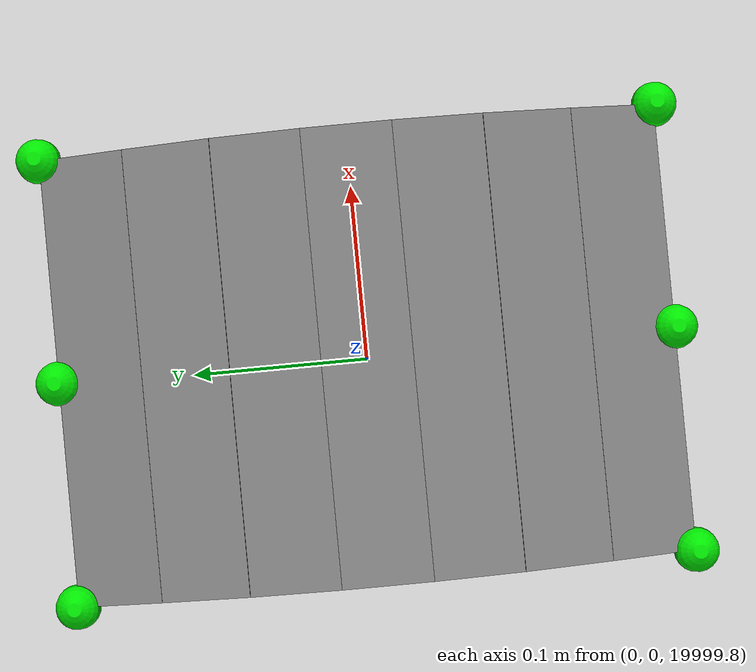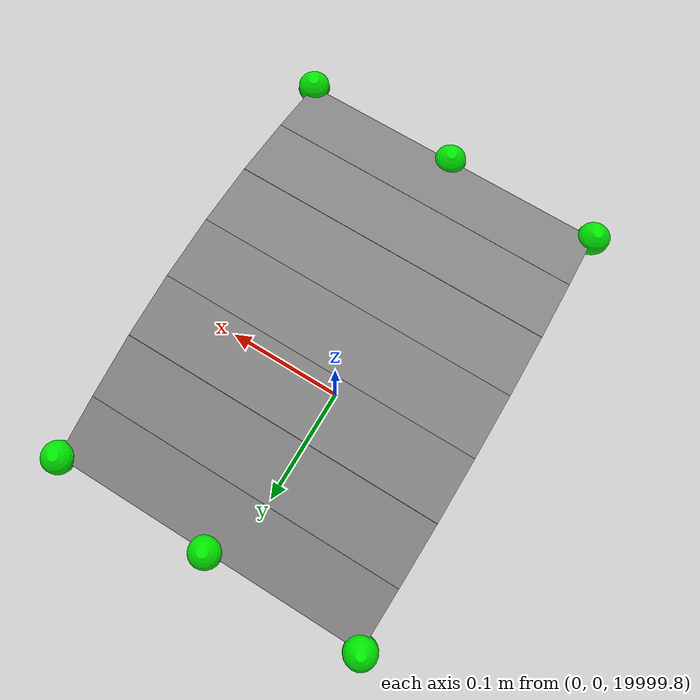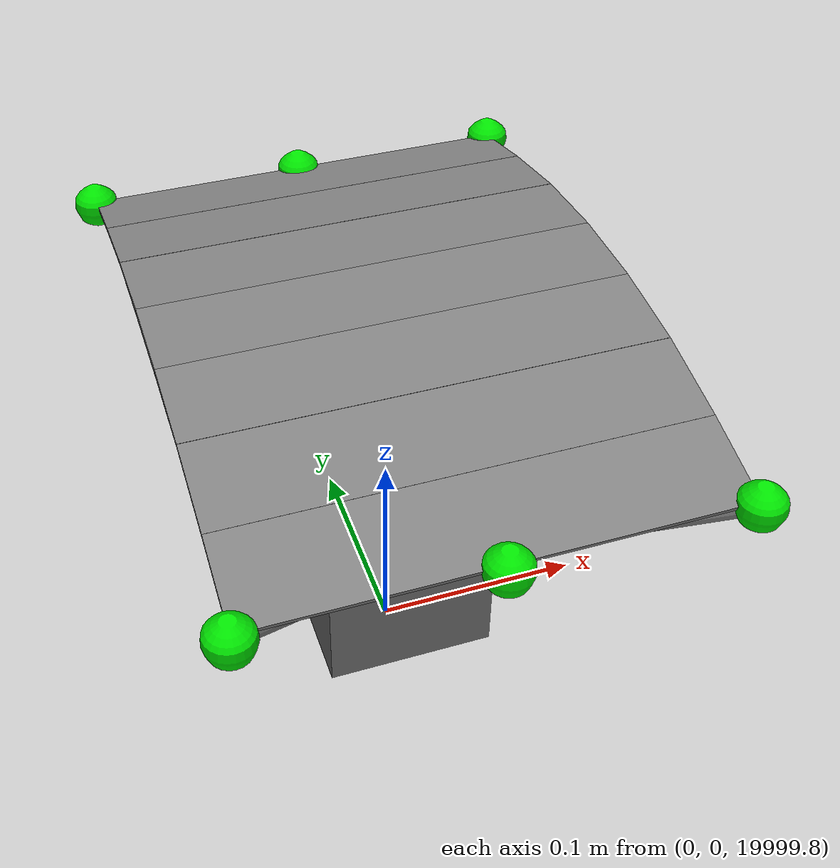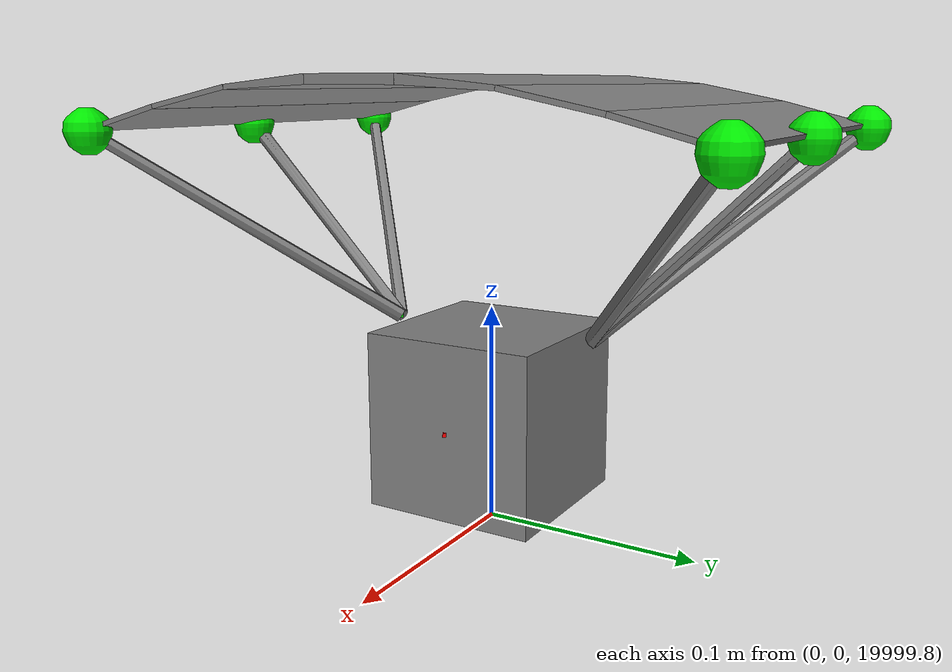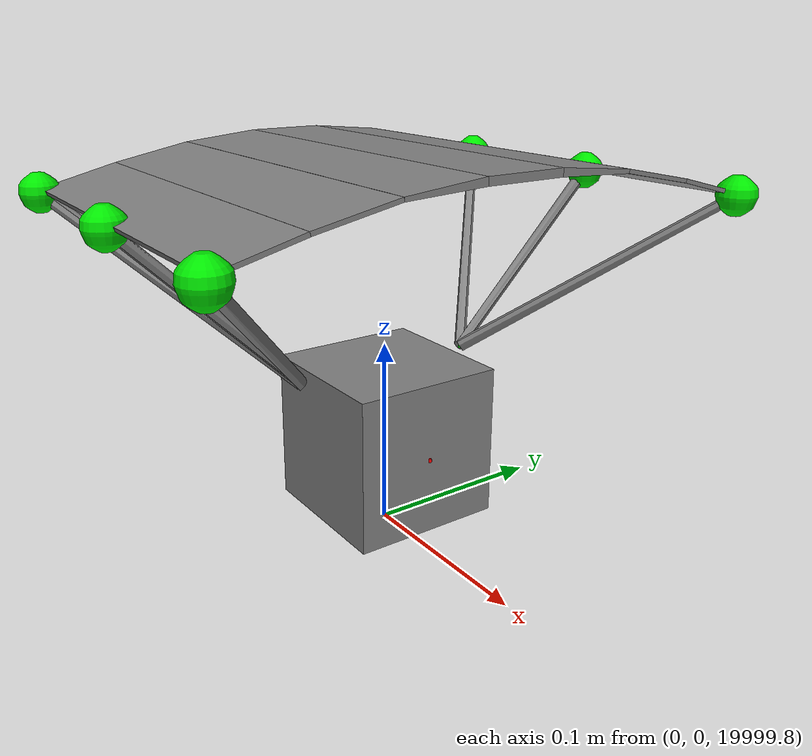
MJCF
<mujoco>
  <worldbody>
    <light diffuse=".5 .5 .5" pos="0 0 1" dir="0 0 -1"/>
    <geom type="plane" size="20 20 0.1" rgba="0 0 0.9 1"/>
    <body name="parachute" pos = "0 0 20000" >

      <freejoint/>
        <geom name="Parahute_module_center" pos="0 0 0" type="box" size="0.1 0.02 0.001" mass="0.01"/>
        <geom name="Parahute_module_left_one" pos="0 0.03982568852 -0.00175" euler="-5 0 0" type="box" size="0.1 0.02 0.001" mass="0.01"/>
        <geom name="Parahute_module_left_two" pos="0 0.07947706556 -0.00702" euler="-10 0 0" type="box" size="0.1 0.02 0.001" mass="0.01"/>
        <geom name="Parahute_module_left_three" pos="0 0.11843119668 -0.016074" euler="-15 0 0" type="box" size="0.1 0.02 0.001" mass="0.01"/>
        <site name="Control_lines_parachute_left_front" pos="0.1 0.13843119668 -0.02125038091" size="0.01" rgba="0 0.9 0 1"/>
        <site name="Control_lines_parachute_left_mid" pos="0 0.13843119668 -0.02125038091" size="0.01" rgba="0 0.9 0 1"/>
        <site name="Control_lines_parachute_left_rear" pos="-0.1 0.13843119668 -0.02125038091" size="0.01" rgba="0 0.9 0 1"/>
        <geom name="Parahute_module_right_one" pos="0 -0.03982568852 -0.00175" euler="5 0 0" type="box" size="0.1 0.02 0.001" mass="0.01"/>
        <geom name="Parahute_module_right_two" pos="0 -0.07947706556 -0.00702" euler="10 0 0" type="box" size="0.1 0.02 0.001" mass="0.01"/>
        <geom name="Parahute_module_right_three" pos="0 -0.11843119668 -0.016074" euler="15 0 0" type="box" size="0.1 0.02 0.001" mass="0.01"/>
        <site name="Control_lines_parachute_right_front" pos="0.1 -0.13843119668 -0.02125038091" size="0.01" rgba="0 0.9 0 1"/>
        <site name="Control_lines_parachute_right_mid" pos="0 -0.13843119668 -0.02125038091" size="0.01" rgba="0 0.9 0 1"/>
        <site name="Control_lines_parachute_right_rear" pos="-0.1 -0.13843119668 -0.02125038091" size="0.01" rgba="0 0.9 0 1"/>
      </body>
    <body name="weight" pos="0 0 19999.85">
          <freejoint/>
          <geom name="Module_box" type="box" size="0.04 0.04 0.04" mass=".5"/>
          <site name="Face" pos="0.04 0 0" size="0.001" rgba="0.9 0 0 1"/>
          <site name="Control_lines_left" pos="0 0.05 0.04" size="0.001" rgba="0 0.9 0 1"/>
          <site name="Control_lines_right" pos="0 -0.05 0.04" size="0.001" rgba="0 0.9 0 1"/>
        </body>
  </worldbody>

  <tendon>
      <spatial limited = "true" range = "0 0.3">
        <site site="Control_lines_left"/>
        <site site="Control_lines_parachute_left_front"/>
      </spatial>
      <spatial limited = "true" range = "0 0.3">
        <site site="Control_lines_left"/>
        <site site="Control_lines_parachute_left_mid"/>
      </spatial>
      <spatial limited = "true" range = "0 0.3">
        <site site="Control_lines_left"/>
        <site site="Control_lines_parachute_left_rear"/>
      </spatial>
      <spatial limited = "true" range = "0 0.3">
        <site site="Control_lines_right"/>
        <site site="Control_lines_parachute_right_front"/>
      </spatial>
      <spatial limited = "true" range = "0 0.3">
        <site site="Control_lines_right"/>
        <site site="Control_lines_parachute_right_mid"/>
      </spatial>
      <spatial limited = "true" range = "0 0.3">
        <site site="Control_lines_right"/>
        <site site="Control_lines_parachute_right_rear"/>
      </spatial>
    </tendon>
  </mujoco>
